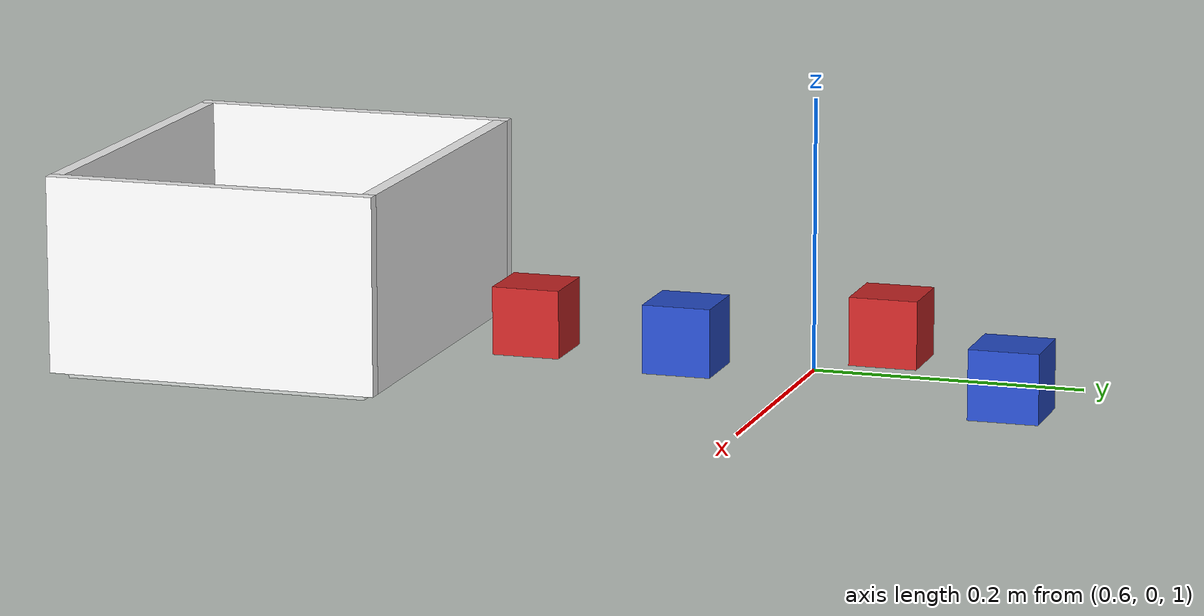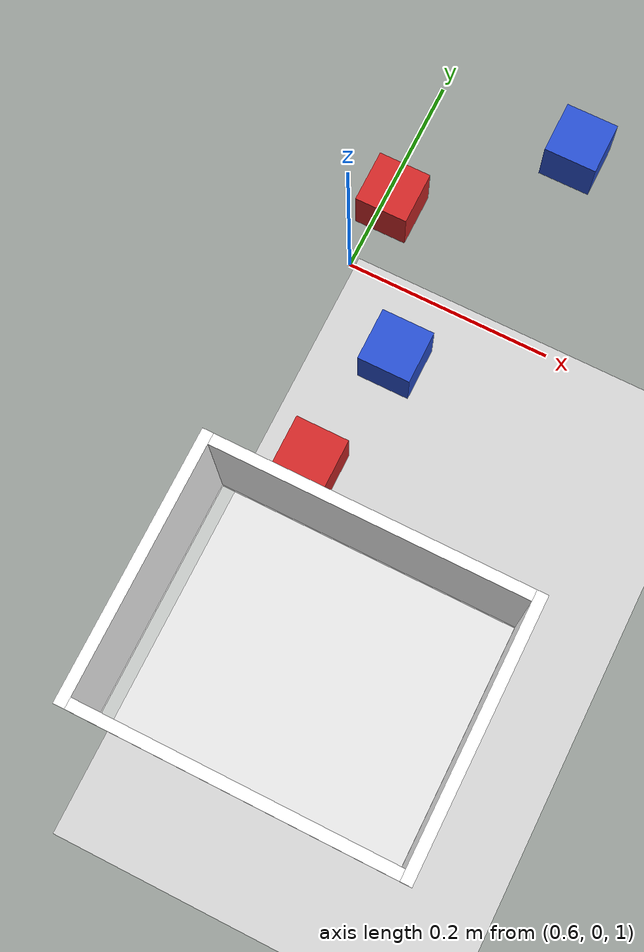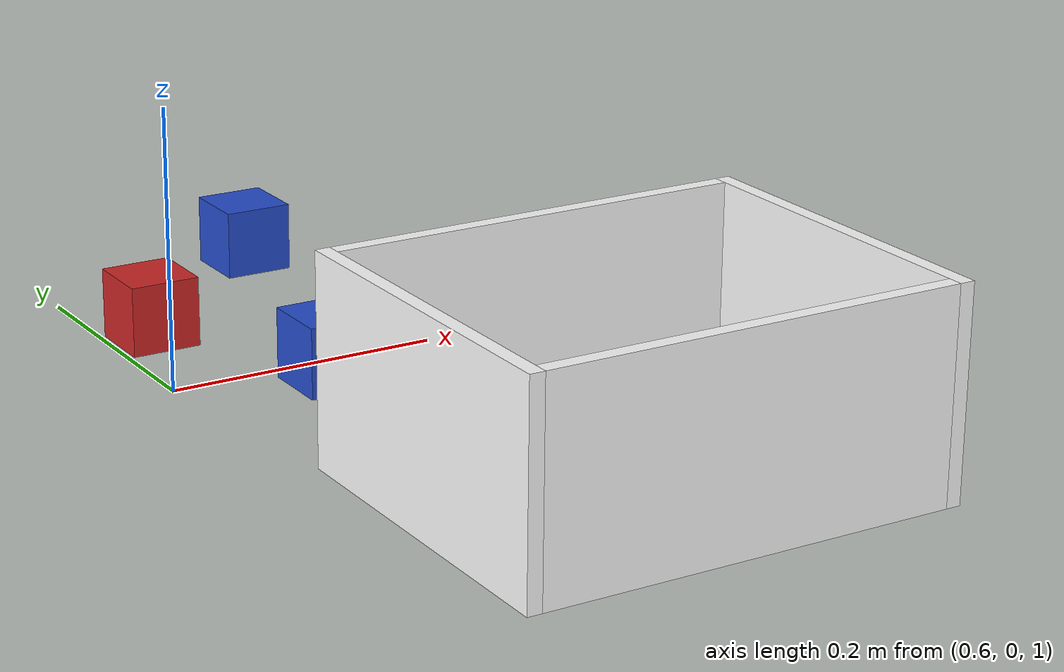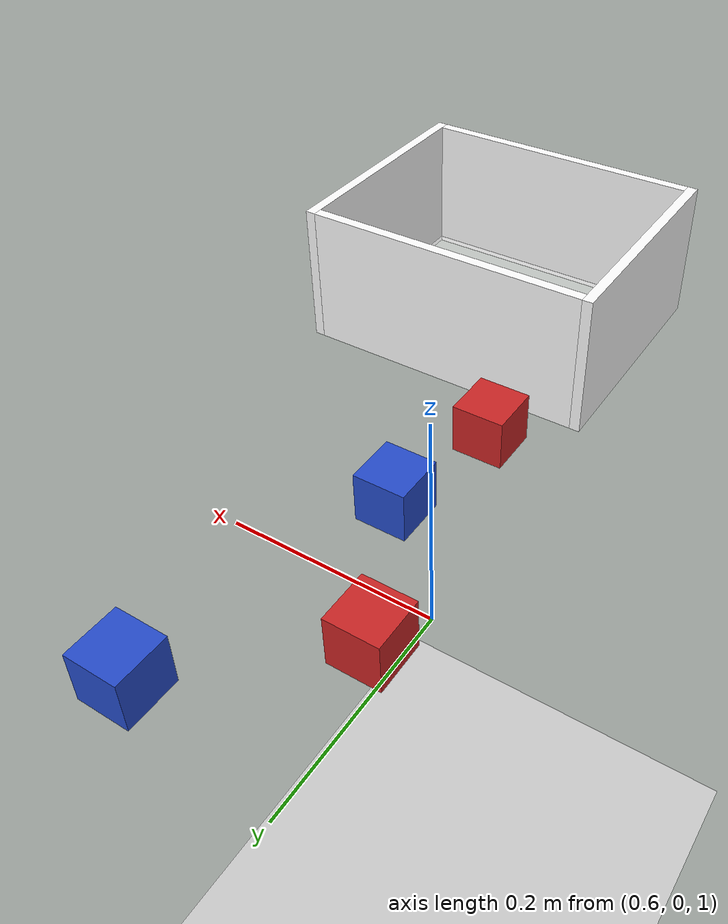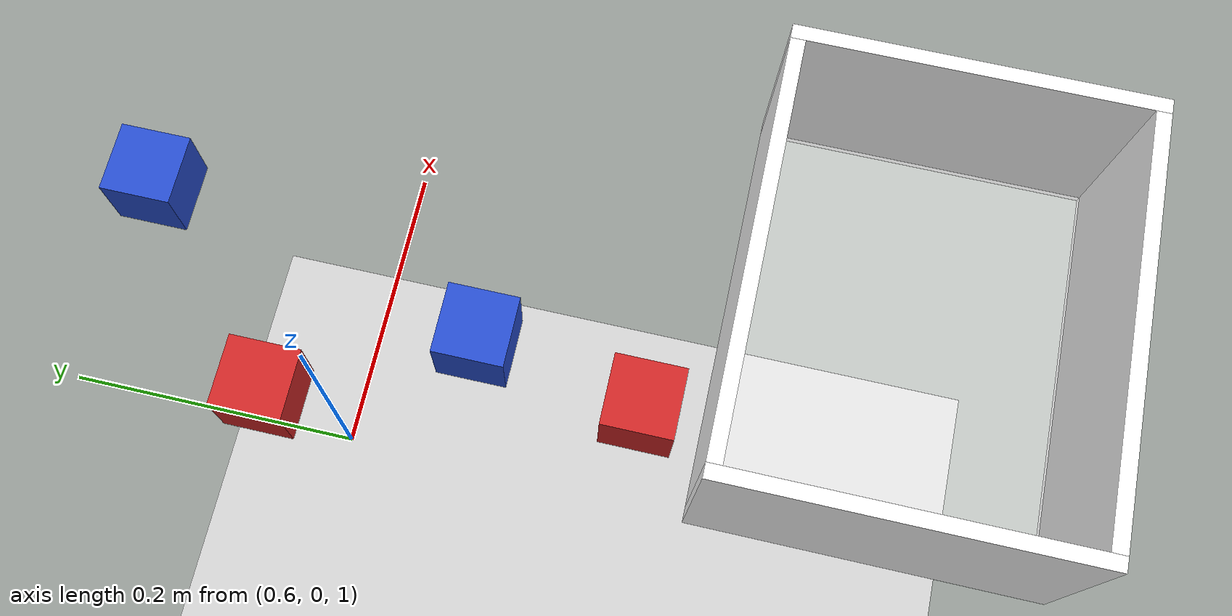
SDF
<sdf version="1.7">
 <world name="default">
  <model name="ground_plane">
   <static>1</static>
   <link name="link">
    <collision name="collision">
     <geometry><plane><normal>0 0 1</normal><size>100 100</size></plane></geometry>
     <surface><friction><ode><mu>100</mu><mu2>50</mu2></ode></friction></surface>
    </collision>
    <visual name="visual">
     <cast_shadows>0</cast_shadows>
     <geometry><plane><normal>0 0 1</normal><size>100 100</size></plane></geometry>
     <material>
      <script><uri>file://media/materials/scripts/gazebo.material</uri><name>Gazebo/Grey</name></script>
     </material>
    </visual>
   </link>
  </model>
  <model name="blue_box_clone">
   <link name="link">
    <inertial>
     <mass>1</mass>
     <inertia>
      <ixx>0.166667</ixx>
      <ixy>0</ixy>
      <ixz>0</ixz>
      <iyy>0.166667</iyy>
      <iyz>0</iyz>
      <izz>0.166667</izz>
     </inertia>
    </inertial>
    <visual name="visual">
     <geometry><box><size>0.05 0.05 0.05</size></box></geometry>
     <material>
      <script><name>Gazebo/Blue</name><uri>file://media/materials/scripts/gazebo.material</uri></script>
      <shader type="pixel"><normal_map>__default__</normal_map></shader>
      <ambient>0 0 1 1</ambient>
      <diffuse>0 0 1 1</diffuse>
      <specular>0.1 0.1 0.1 1</specular>
      <emissive>0 0 0 1</emissive>
     </material>
    </visual>
    <collision name="collision">
     <geometry><box><size>0.05 0.05 0.05</size></box></geometry>
     <surface>
      <friction>
       <ode><mu>1</mu><mu2>1</mu2><fdir1>0 0 0</fdir1><slip1>0</slip1><slip2>0</slip2></ode>
       <torsional>
        <coefficient>1</coefficient>
        <patch_radius>0</patch_radius>
        <surface_radius>0</surface_radius>
        <use_patch_radius>1</use_patch_radius>
        <ode><slip>0</slip></ode>
       </torsional>
      </friction>
      <bounce><restitution_coefficient>0</restitution_coefficient><threshold>1e+06</threshold></bounce>
      <contact>
       <collide_without_contact>0</collide_without_contact>
       <collide_without_contact_bitmask>1</collide_without_contact_bitmask>
       <collide_bitmask>1</collide_bitmask>
       <ode>
        <soft_cfm>0</soft_cfm>
        <soft_erp>0.2</soft_erp>
        <kp>1e+13</kp>
        <kd>1</kd>
        <max_vel>0.01</max_vel>
        <min_depth>0</min_depth>
       </ode>
       <bullet>
        <split_impulse>1</split_impulse>
        <split_impulse_penetration_threshold>-0.01</split_impulse_penetration_threshold>
        <soft_cfm>0</soft_cfm>
        <soft_erp>0.2</soft_erp>
        <kp>1e+13</kp>
        <kd>1</kd>
       </bullet>
      </contact>
     </surface>
    </collision>
   </link>
   <static>0</static>
   <pose>0.681294 -0.072222 1.04 -6e-06 -3.5e-05 0.000136</pose>
  </model>
  <model name="red_box_clone_clone">
   <link name="link">
    <inertial>
     <mass>1</mass>
     <inertia>
      <ixx>0.166667</ixx>
      <ixy>0</ixy>
      <ixz>0</ixz>
      <iyy>0.166667</iyy>
      <iyz>0</iyz>
      <izz>0.166667</izz>
     </inertia>
    </inertial>
    <visual name="visual">
     <geometry><box><size>0.05 0.05 0.05</size></box></geometry>
     <material>
      <script><name>Gazebo/Red</name><uri>file://media/materials/scripts/gazebo.material</uri></script>
      <shader type="pixel"><normal_map>__default__</normal_map></shader>
      <ambient>1 0 0 1</ambient>
      <diffuse>1 0 0 1</diffuse>
      <specular>0.1 0.1 0.1 1</specular>
      <emissive>0 0 0 1</emissive>
     </material>
    </visual>
    <collision name="collision">
     <geometry><box><size>0.05 0.05 0.05</size></box></geometry>
     <surface>
      <friction>
       <ode><mu>1</mu><mu2>1</mu2><fdir1>0 0 0</fdir1><slip1>0</slip1><slip2>0</slip2></ode>
       <torsional>
        <coefficient>1</coefficient>
        <patch_radius>0</patch_radius>
        <surface_radius>0</surface_radius>
        <use_patch_radius>1</use_patch_radius>
        <ode><slip>0</slip></ode>
       </torsional>
      </friction>
      <bounce><restitution_coefficient>0</restitution_coefficient><threshold>1e+06</threshold></bounce>
      <contact>
       <collide_without_contact>0</collide_without_contact>
       <collide_without_contact_bitmask>1</collide_without_contact_bitmask>
       <collide_bitmask>1</collide_bitmask>
       <ode>
        <soft_cfm>0</soft_cfm>
        <soft_erp>0.2</soft_erp>
        <kp>1e+13</kp>
        <kd>1</kd>
        <max_vel>0.01</max_vel>
        <min_depth>0</min_depth>
       </ode>
       <bullet>
        <split_impulse>1</split_impulse>
        <split_impulse_penetration_threshold>-0.01</split_impulse_penetration_threshold>
        <soft_cfm>0</soft_cfm>
        <soft_erp>0.2</soft_erp>
        <kp>1e+13</kp>
        <kd>1</kd>
       </bullet>
      </contact>
     </surface>
    </collision>
   </link>
   <static>0</static>
   <pose>0.613097 0.061129 1.03999 6e-06 5e-06 9.9e-05</pose>
  </model>
  <model name="red_sorting_bin">
   <static>1</static>
   <pose>0.738472 -0.354243 1.03 0 -0 0</pose>
   <link name="link">
    <visual name="base_visual">
     <geometry><box><size>0.28 0.22 0.01</size></box></geometry>
     <material><ambient>1 1 1 0.45</ambient><diffuse>1 1 1 0.45</diffuse></material>
    </visual>
    <collision name="base_collision"><geometry><box><size>0.28 0.22 0.01</size></box></geometry></collision>
    <visual name="front_wall_visual">
     <pose>0.145 0 0.07 0 -0 0</pose>
     <geometry><box><size>0.01 0.24 0.14</size></box></geometry>
     <material><ambient>1 1 1 1</ambient><diffuse>1 1 1 1</diffuse></material>
    </visual>
    <collision name="front_wall_collision">
     <pose>0.145 0 0.07 0 -0 0</pose>
     <geometry><box><size>0.01 0.24 0.14</size></box></geometry>
    </collision>
    <visual name="back_wall_visual">
     <pose>-0.145 0 0.07 0 -0 0</pose>
     <geometry><box><size>0.01 0.24 0.14</size></box></geometry>
     <material><ambient>1 1 1 1</ambient><diffuse>1 1 1 1</diffuse></material>
    </visual>
    <collision name="back_wall_collision">
     <pose>-0.145 0 0.07 0 -0 0</pose>
     <geometry><box><size>0.01 0.24 0.14</size></box></geometry>
    </collision>
    <visual name="left_wall_visual">
     <pose>0 0.115 0.07 0 -0 0</pose>
     <geometry><box><size>0.28 0.01 0.14</size></box></geometry>
     <material><ambient>1 1 1 1</ambient><diffuse>1 1 1 1</diffuse></material>
    </visual>
    <collision name="left_wall_collision">
     <pose>0 0.115 0.07 0 -0 0</pose>
     <geometry><box><size>0.28 0.01 0.14</size></box></geometry>
    </collision>
    <visual name="right_wall_visual">
     <pose>0 -0.115 0.07 0 -0 0</pose>
     <geometry><box><size>0.28 0.01 0.14</size></box></geometry>
     <material><ambient>1 1 1 1</ambient><diffuse>1 1 1 1</diffuse></material>
    </visual>
    <collision name="right_wall_collision">
     <pose>0 -0.115 0.07 0 -0 0</pose>
     <geometry><box><size>0.28 0.01 0.14</size></box></geometry>
    </collision>
   </link>
  </model>
  <model name="blue_box_clone_3">
   <link name="link">
    <inertial>
     <mass>1</mass>
     <inertia>
      <ixx>0.166667</ixx>
      <ixy>0</ixy>
      <ixz>0</ixz>
      <iyy>0.166667</iyy>
      <iyz>0</iyz>
      <izz>0.166667</izz>
     </inertia>
    </inertial>
    <visual name="visual">
     <geometry><box><size>0.05 0.05 0.05</size></box></geometry>
     <material>
      <script><name>Gazebo/Blue</name><uri>file://media/materials/scripts/gazebo.material</uri></script>
      <shader type="pixel"><normal_map>__default__</normal_map></shader>
      <ambient>0 0 1 1</ambient>
      <diffuse>0 0 1 1</diffuse>
      <specular>0.1 0.1 0.1 1</specular>
      <emissive>0 0 0 1</emissive>
     </material>
    </visual>
    <collision name="collision">
     <geometry><box><size>0.05 0.05 0.05</size></box></geometry>
     <surface>
      <friction>
       <ode><mu>1</mu><mu2>1</mu2><fdir1>0 0 0</fdir1><slip1>0</slip1><slip2>0</slip2></ode>
       <torsional>
        <coefficient>1</coefficient>
        <patch_radius>0</patch_radius>
        <surface_radius>0</surface_radius>
        <use_patch_radius>1</use_patch_radius>
        <ode><slip>0</slip></ode>
       </torsional>
      </friction>
      <bounce><restitution_coefficient>0</restitution_coefficient><threshold>1e+06</threshold></bounce>
      <contact>
       <collide_without_contact>0</collide_without_contact>
       <collide_without_contact_bitmask>1</collide_without_contact_bitmask>
       <collide_bitmask>1</collide_bitmask>
       <ode>
        <soft_cfm>0</soft_cfm>
        <soft_erp>0.2</soft_erp>
        <kp>1e+13</kp>
        <kd>1</kd>
        <max_vel>0.01</max_vel>
        <min_depth>0</min_depth>
       </ode>
       <bullet>
        <split_impulse>1</split_impulse>
        <split_impulse_penetration_threshold>-0.01</split_impulse_penetration_threshold>
        <soft_cfm>0</soft_cfm>
        <soft_erp>0.2</soft_erp>
        <kp>1e+13</kp>
        <kd>1</kd>
       </bullet>
      </contact>
     </surface>
    </collision>
   </link>
   <static>0</static>
   <pose>0.744443 0.180318 1.04001 -7e-06 0.000177 0.000165</pose>
  </model>
  <model name="red_box_clone_clone_1_clone">
   <link name="link">
    <inertial>
     <mass>1</mass>
     <inertia>
      <ixx>0.166667</ixx>
      <ixy>0</ixy>
      <ixz>0</ixz>
      <iyy>0.166667</iyy>
      <iyz>0</iyz>
      <izz>0.166667</izz>
     </inertia>
    </inertial>
    <visual name="visual">
     <geometry><box><size>0.05 0.05 0.05</size></box></geometry>
     <material>
      <script><name>Gazebo/Red</name><uri>file://media/materials/scripts/gazebo.material</uri></script>
      <shader type="pixel"><normal_map>__default__</normal_map></shader>
      <ambient>1 0 0 1</ambient>
      <diffuse>1 0 0 1</diffuse>
      <specular>0.1 0.1 0.1 1</specular>
      <emissive>0 0 0 1</emissive>
     </material>
    </visual>
    <collision name="collision">
     <geometry><box><size>0.05 0.05 0.05</size></box></geometry>
     <surface>
      <friction>
       <ode><mu>1</mu><mu2>1</mu2><fdir1>0 0 0</fdir1><slip1>0</slip1><slip2>0</slip2></ode>
       <torsional>
        <coefficient>1</coefficient>
        <patch_radius>0</patch_radius>
        <surface_radius>0</surface_radius>
        <use_patch_radius>1</use_patch_radius>
        <ode><slip>0</slip></ode>
       </torsional>
      </friction>
      <bounce><restitution_coefficient>0</restitution_coefficient><threshold>1e+06</threshold></bounce>
      <contact>
       <collide_without_contact>0</collide_without_contact>
       <collide_without_contact_bitmask>1</collide_without_contact_bitmask>
       <collide_bitmask>1</collide_bitmask>
       <ode>
        <soft_cfm>0</soft_cfm>
        <soft_erp>0.2</soft_erp>
        <kp>1e+13</kp>
        <kd>1</kd>
        <max_vel>0.01</max_vel>
        <min_depth>0</min_depth>
       </ode>
       <bullet>
        <split_impulse>1</split_impulse>
        <split_impulse_penetration_threshold>-0.01</split_impulse_penetration_threshold>
        <soft_cfm>0</soft_cfm>
        <soft_erp>0.2</soft_erp>
        <kp>1e+13</kp>
        <kd>1</kd>
       </bullet>
      </contact>
     </surface>
    </collision>
   </link>
   <static>0</static>
   <pose>0.657861 -0.192318 1.04 1e-05 6e-06 7.9e-05</pose>
  </model>
 </world>
</sdf>
